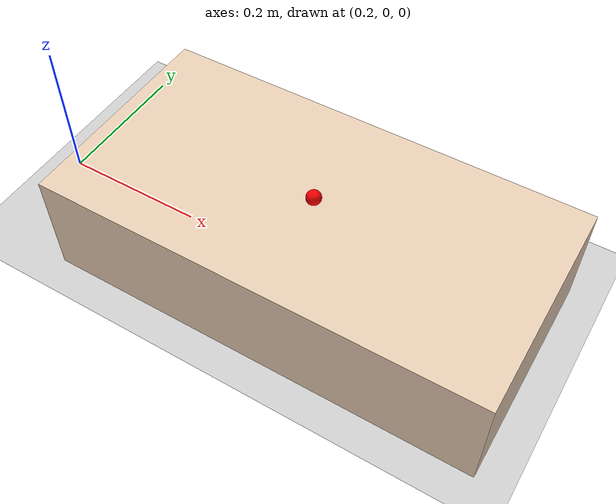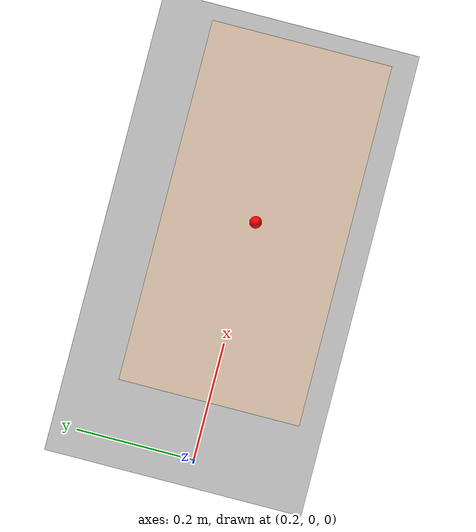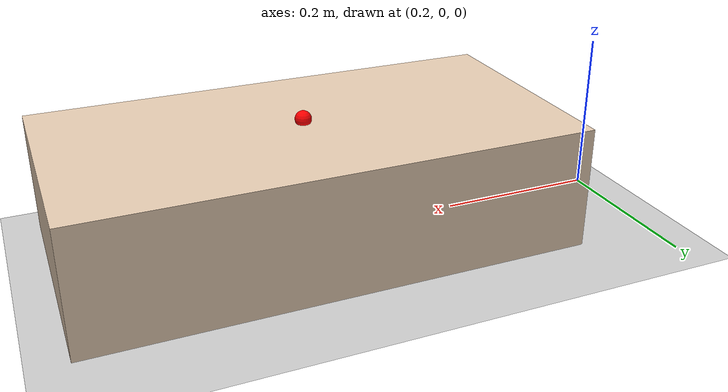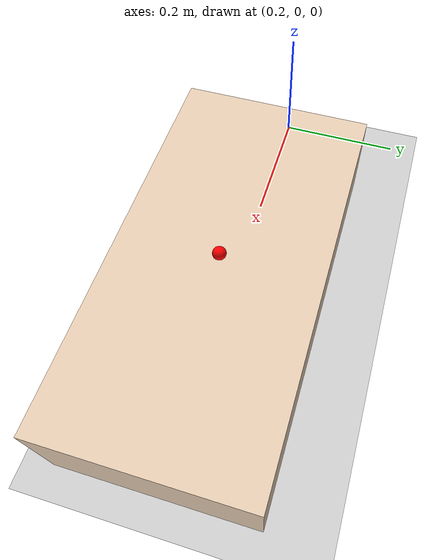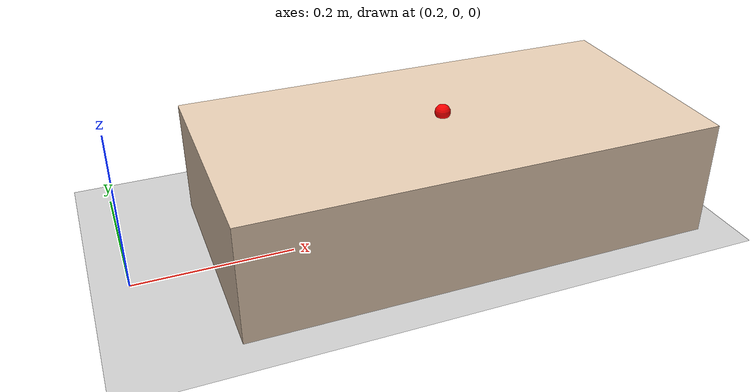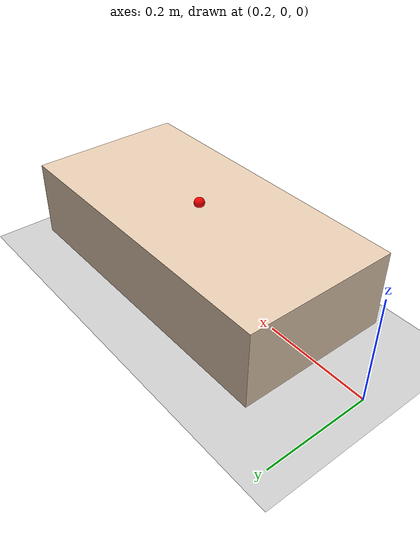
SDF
<?xml version="1.0"?>
<sdf version="1.9">
  <world name="catheter_world">

    <!-- ── Core GZ Sim 8 plugins ─────────────────────────────────── -->
    <plugin filename="gz-sim-physics-system"
            name="gz::sim::systems::Physics"/>
    <plugin filename="gz-sim-scene-broadcaster-system"
            name="gz::sim::systems::SceneBroadcaster"/>
    <plugin filename="gz-sim-user-commands-system"
            name="gz::sim::systems::UserCommands"/>

    <!-- ── Lighting ──────────────────────────────────────────────── -->
    <light type="directional" name="sun">
      <cast_shadows>true</cast_shadows>
      <pose>0 0 10 0 0 0</pose>
      <diffuse>0.8 0.8 0.8 1</diffuse>
      <specular>0.2 0.2 0.2 1</specular>
      <direction>-0.5 0.1 -0.9</direction>
      <attenuation>
        <range>1000</range>
        <constant>0.9</constant>
        <linear>0.01</linear>
        <quadratic>0.001</quadratic>
      </attenuation>
    </light>

    <!-- ── Ground plane ──────────────────────────────────────────── -->
    <model name="ground_plane">
      <static>true</static>
      <link name="link">
        <collision name="collision">
          <geometry>
            <plane>
              <normal>0 0 1</normal>
              <size>20 20</size>
            </plane>
          </geometry>
        </collision>
        <visual name="visual">
          <geometry>
            <plane>
              <normal>0 0 1</normal>
              <size>20 20</size>
            </plane>
          </geometry>
          <material>
            <ambient>0.8 0.8 0.8 1</ambient>
            <diffuse>0.8 0.8 0.8 1</diffuse>
            <specular>0.01 0.01 0.01 1</specular>
          </material>
        </visual>
      </link>
    </model>

    <!-- ── Patient phantom ───────────────────────────────────────── -->
    <!--  Simplified torso/leg region: 60 cm long, 30 cm wide, 15 cm tall
          Positioned 60 cm in front of the arm base.                     -->
    <model name="patient_phantom">
      <static>true</static>
      <pose>0.6 0 0.075 0 0 0</pose>
      <link name="link">
        <collision name="collision">
          <geometry>
            <box>
              <size>0.6 0.3 0.15</size>
            </box>
          </geometry>
        </collision>
        <visual name="visual">
          <geometry>
            <box>
              <size>0.6 0.3 0.15</size>
            </box>
          </geometry>
          <material>
            <ambient>0.9 0.8 0.7 1</ambient>
            <diffuse>0.9 0.8 0.7 1</diffuse>
            <specular>0.05 0.05 0.05 1</specular>
          </material>
        </visual>
      </link>
    </model>

    <!-- ── Target marker (static red sphere) ────────────────────── -->
    <model name="target_marker">
      <static>true</static>
      <pose>0.6 0 0.155 0 0 0</pose>
      <link name="link">
        <visual name="visual">
          <geometry>
            <sphere>
              <radius>0.01</radius>
            </sphere>
          </geometry>
          <material>
            <ambient>1 0 0 1</ambient>
            <diffuse>1 0 0 1</diffuse>
            <specular>0.1 0.1 0.1 1</specular>
          </material>
        </visual>
      </link>
    </model>

  </world>
</sdf>
